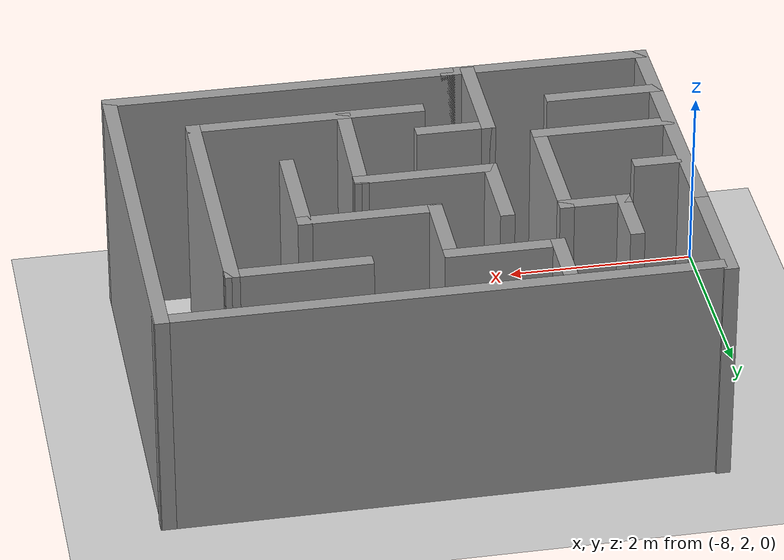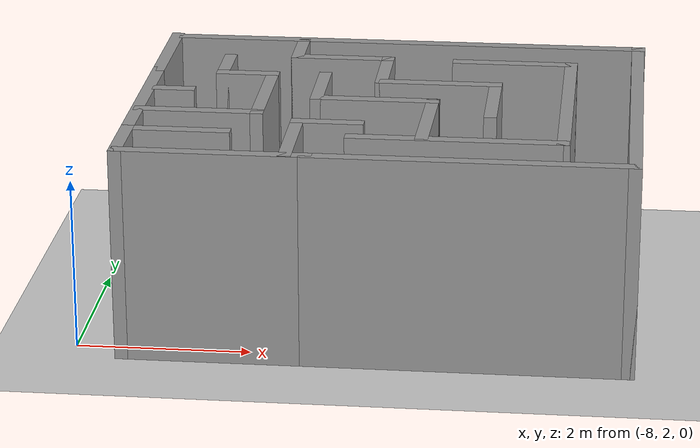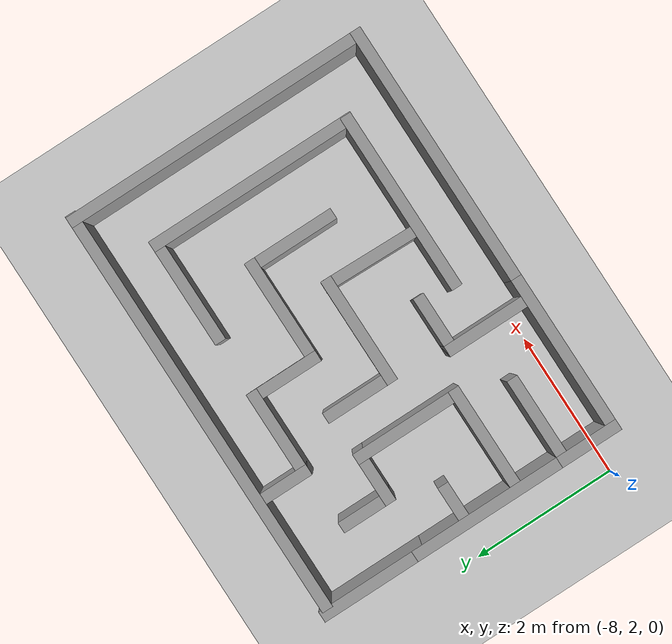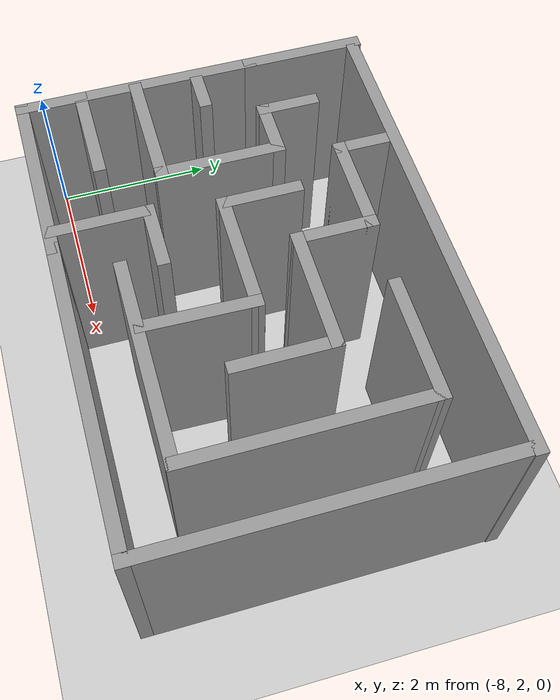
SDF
<sdf version="1.7">
 <world name="default">
  <light name="sun" type="directional">
   <pose>0 0 10 0 -0 0</pose>
   <diffuse>0.8 0.8 0.8 1</diffuse>
   <specular>0.2 0.2 0.2 1</specular>
   <attenuation>
    <range>1000</range>
    <constant>0.9</constant>
    <linear>0.01</linear>
    <quadratic>0.001</quadratic>
   </attenuation>
   <direction>-0.5 0.1 -0.9</direction>
   <spot><inner_angle>0</inner_angle><outer_angle>0</outer_angle><falloff>0</falloff></spot>
  </light>
  <gravity>0 0 -9.8</gravity>
  <magnetic_field>6e-06 2.3e-05 -4.2e-05</magnetic_field>
  <atmosphere type="adiabatic"/>
  <physics type="ode">
   <max_step_size>0.001</max_step_size>
   <real_time_factor>1</real_time_factor>
   <real_time_update_rate>1000</real_time_update_rate>
  </physics>
  <scene><ambient>0.4 0.4 0.4 1</ambient><background>0.7 0.7 0.7 1</background><shadows>1</shadows></scene>
  <spherical_coordinates>
   <surface_model>EARTH_WGS84</surface_model>
   <latitude_deg>0</latitude_deg>
   <longitude_deg>0</longitude_deg>
   <elevation>0</elevation>
   <heading_deg>0</heading_deg>
  </spherical_coordinates>
  <model name="maze">
   <pose>-3.75292 2.99471 0 0 -0 0</pose>
   <link name="Wall_28">
    <collision name="Wall_28_Collision">
     <geometry><box><size>0.86 0.15 2.5</size></box></geometry>
     <pose>0 0 1.25 0 -0 0</pose>
    </collision>
    <visual name="Wall_28_Visual">
     <pose>0 0 1.25 0 -0 0</pose>
     <geometry><box><size>0.86 0.15 2.5</size></box></geometry>
     <material>
      <script><uri>file://media/materials/scripts/gazebo.material</uri><name>Gazebo/Grey</name></script>
      <ambient>1 1 1 1</ambient>
     </material>
     <meta><layer>0</layer></meta>
    </visual>
    <pose>-3.67792 -0.885292 0 0 -0 1.5708</pose>
   </link>
   <link name="Wall_30">
    <collision name="Wall_30_Collision">
     <geometry><box><size>1.25 0.15 2.5</size></box></geometry>
     <pose>0 0 1.25 0 -0 0</pose>
    </collision>
    <visual name="Wall_30_Visual">
     <pose>0 0 1.25 0 -0 0</pose>
     <geometry><box><size>1.25 0.15 2.5</size></box></geometry>
     <material>
      <script><uri>file://media/materials/scripts/gazebo.material</uri><name>Gazebo/Grey</name></script>
      <ambient>1 1 1 1</ambient>
     </material>
     <meta><layer>0</layer></meta>
    </visual>
    <pose>-3.12792 -0.530292 0 0 -0 0</pose>
   </link>
   <link name="Wall_32">
    <collision name="Wall_32_Collision">
     <geometry><box><size>2.25 0.15 2.5</size></box></geometry>
     <pose>0 0 1.25 0 -0 0</pose>
    </collision>
    <visual name="Wall_32_Visual">
     <pose>0 0 1.25 0 -0 0</pose>
     <geometry><box><size>2.25 0.15 2.5</size></box></geometry>
     <material>
      <script><uri>file://media/materials/scripts/gazebo.material</uri><name>Gazebo/Grey</name></script>
      <ambient>1 1 1 1</ambient>
     </material>
     <meta><layer>0</layer></meta>
    </visual>
    <pose>-2.62792 -1.24029 0 0 -0 0</pose>
   </link>
   <link name="Wall_33">
    <collision name="Wall_33_Collision">
     <geometry><box><size>3.75013 0.15 2.5</size></box></geometry>
     <pose>0 0 1.25 0 -0 0</pose>
    </collision>
    <visual name="Wall_33_Visual">
     <pose>0 0 1.25 0 -0 0</pose>
     <geometry><box><size>3.75013 0.15 2.5</size></box></geometry>
     <material>
      <script><uri>file://media/materials/scripts/gazebo.material</uri><name>Gazebo/Grey</name></script>
      <ambient>1 1 1 1</ambient>
     </material>
     <meta><layer>0</layer></meta>
    </visual>
    <pose>0.22208 -1.24029 0 0 -0 0</pose>
   </link>
   <link name="Wall_35">
    <collision name="Wall_35_Collision">
     <geometry><box><size>1.25 0.15 2.5</size></box></geometry>
     <pose>0 0 1.25 0 -0 0</pose>
    </collision>
    <visual name="Wall_35_Visual">
     <pose>0 0 1.25 0 -0 0</pose>
     <geometry><box><size>1.25 0.15 2.5</size></box></geometry>
     <material>
      <script><uri>file://media/materials/scripts/gazebo.material</uri><name>Gazebo/Grey</name></script>
      <ambient>1 1 1 1</ambient>
     </material>
     <meta><layer>0</layer></meta>
    </visual>
    <pose>-1.80129 -0.669011 0 0 -0 1.5708</pose>
   </link>
   <link name="Wall_36">
    <collision name="Wall_36_Collision">
     <geometry><box><size>0.835932 0.15 2.5</size></box></geometry>
     <pose>0 0 1.25 0 -0 0</pose>
    </collision>
    <visual name="Wall_36_Visual">
     <pose>0 0 1.25 0 -0 0</pose>
     <geometry><box><size>0.835932 0.15 2.5</size></box></geometry>
     <material>
      <script><uri>file://media/materials/scripts/gazebo.material</uri><name>Gazebo/Grey</name></script>
      <ambient>1 1 1 1</ambient>
     </material>
     <meta><layer>0</layer></meta>
    </visual>
    <pose>-1.45833 -0.119011 0 0 -0 0</pose>
   </link>
   <link name="Wall_38">
    <collision name="Wall_38_Collision">
     <geometry><box><size>2.5 0.15 2.5</size></box></geometry>
     <pose>0 0 1.25 0 -0 0</pose>
    </collision>
    <visual name="Wall_38_Visual">
     <pose>0 0 1.25 0 -0 0</pose>
     <geometry><box><size>2.5 0.15 2.5</size></box></geometry>
     <material>
      <script><uri>file://media/materials/scripts/gazebo.material</uri><name>Gazebo/Grey</name></script>
      <ambient>1 1 1 1</ambient>
     </material>
     <meta><layer>0</layer></meta>
    </visual>
    <pose>0.038367 -0.573286 0 0 -0 0</pose>
   </link>
   <link name="Wall_41">
    <collision name="Wall_41_Collision">
     <geometry><box><size>4.275 0.15 2.5</size></box></geometry>
     <pose>0 0 1.25 0 -0 0</pose>
    </collision>
    <visual name="Wall_41_Visual">
     <pose>0 0 1.25 0 -0 0</pose>
     <geometry><box><size>4.275 0.15 2.5</size></box></geometry>
     <material>
      <script><uri>file://media/materials/scripts/gazebo.material</uri><name>Gazebo/Grey</name></script>
      <ambient>1 1 1 1</ambient>
     </material>
     <meta><layer>0</layer></meta>
    </visual>
    <pose>2.02208 0.822208 0 0 -0 1.5708</pose>
   </link>
   <link name="Wall_42">
    <collision name="Wall_42_Collision">
     <geometry><box><size>5.75 0.15 2.5</size></box></geometry>
     <pose>0 0 1.25 0 -0 0</pose>
    </collision>
    <visual name="Wall_42_Visual">
     <pose>0 0 1.25 0 -0 0</pose>
     <geometry><box><size>5.75 0.15 2.5</size></box></geometry>
     <material>
      <script><uri>file://media/materials/scripts/gazebo.material</uri><name>Gazebo/Grey</name></script>
      <ambient>1 1 1 1</ambient>
     </material>
     <meta><layer>0</layer></meta>
    </visual>
    <pose>-0.76642 2.88471 0 0 -0 3.14159</pose>
   </link>
   <link name="Wall_44">
    <collision name="Wall_44_Collision">
     <geometry><box><size>2.25 0.15 2.5</size></box></geometry>
     <pose>0 0 1.25 0 -0 0</pose>
    </collision>
    <visual name="Wall_44_Visual">
     <pose>0 0 1.25 0 -0 0</pose>
     <geometry><box><size>2.25 0.15 2.5</size></box></geometry>
     <material>
      <script><uri>file://media/materials/scripts/gazebo.material</uri><name>Gazebo/Grey</name></script>
      <ambient>1 1 1 1</ambient>
     </material>
     <meta><layer>0</layer></meta>
    </visual>
    <pose>-3.67792 0.519708 0 0 -0 1.5708</pose>
   </link>
   <link name="Wall_46">
    <collision name="Wall_46_Collision">
     <geometry><box><size>2.92415 0.15 2.5</size></box></geometry>
     <pose>0 0 1.25 0 -0 0</pose>
    </collision>
    <visual name="Wall_46_Visual">
     <pose>0 0 1.25 0 -0 0</pose>
     <geometry><box><size>2.92415 0.15 2.5</size></box></geometry>
     <material>
      <script><uri>file://media/materials/scripts/gazebo.material</uri><name>Gazebo/Grey</name></script>
      <ambient>1 1 1 1</ambient>
     </material>
     <meta><layer>0</layer></meta>
    </visual>
    <pose>1.22582 0.813789 0 0 -0 1.57011</pose>
   </link>
   <link name="Wall_48">
    <collision name="Wall_48_Collision">
     <geometry><box><size>1.5 0.15 2.5</size></box></geometry>
     <pose>0 0 1.25 0 -0 0</pose>
    </collision>
    <visual name="Wall_48_Visual">
     <pose>0 0 1.25 0 -0 0</pose>
     <geometry><box><size>1.5 0.15 2.5</size></box></geometry>
     <material>
      <script><uri>file://media/materials/scripts/gazebo.material</uri><name>Gazebo/Grey</name></script>
      <ambient>1 1 1 1</ambient>
     </material>
     <meta><layer>0</layer></meta>
    </visual>
    <pose>0.551765 2.20086 0 0 -0 3.14159</pose>
   </link>
   <link name="Wall_51">
    <collision name="Wall_51_Collision">
     <geometry><box><size>1.5 0.15 2.5</size></box></geometry>
     <pose>0 0 1.25 0 -0 0</pose>
    </collision>
    <visual name="Wall_51_Visual">
     <pose>0 0 1.25 0 -0 0</pose>
     <geometry><box><size>1.5 0.15 2.5</size></box></geometry>
     <material>
      <script><uri>file://media/materials/scripts/gazebo.material</uri><name>Gazebo/Grey</name></script>
      <ambient>1 1 1 1</ambient>
     </material>
     <meta><layer>0</layer></meta>
    </visual>
    <pose>-2.97072 0.140359 0 0 -0 0</pose>
   </link>
   <link name="Wall_53">
    <collision name="Wall_53_Collision">
     <geometry><box><size>1.54004 0.15 2.5</size></box></geometry>
     <pose>0 0 1.25 0 -0 0</pose>
    </collision>
    <visual name="Wall_53_Visual">
     <pose>0 0 1.25 0 -0 0</pose>
     <geometry><box><size>1.54004 0.15 2.5</size></box></geometry>
     <material>
      <script><uri>file://media/materials/scripts/gazebo.material</uri><name>Gazebo/Grey</name></script>
      <ambient>1 1 1 1</ambient>
     </material>
     <meta><layer>0</layer></meta>
    </visual>
    <pose>-2.29572 0.835359 0 0 -0 1.5708</pose>
   </link>
   <link name="Wall_56">
    <collision name="Wall_56_Collision">
     <geometry><box><size>0.5 0.15 2.5</size></box></geometry>
     <pose>0 0 1.25 0 -0 0</pose>
    </collision>
    <visual name="Wall_56_Visual">
     <pose>0 0 1.25 0 -0 0</pose>
     <geometry><box><size>0.5 0.15 2.5</size></box></geometry>
     <material>
      <script><uri>file://media/materials/scripts/gazebo.material</uri><name>Gazebo/Grey</name></script>
      <ambient>1 1 1 1</ambient>
     </material>
     <meta><layer>0</layer></meta>
    </visual>
    <pose>-3.38222 0.884359 0 0 -0 0</pose>
   </link>
   <link name="Wall_63">
    <collision name="Wall_63_Collision">
     <geometry><box><size>1.5 0.15 2.5</size></box></geometry>
     <pose>0 0 1.25 0 -0 0</pose>
    </collision>
    <visual name="Wall_63_Visual">
     <pose>0 0 1.25 0 -0 0</pose>
     <geometry><box><size>1.5 0.15 2.5</size></box></geometry>
     <material>
      <script><uri>file://media/materials/scripts/gazebo.material</uri><name>Gazebo/Grey</name></script>
      <ambient>1 1 1 1</ambient>
     </material>
     <meta><layer>0</layer></meta>
    </visual>
    <pose>-1.00022 0.712359 0 0 -0 3.14159</pose>
   </link>
   <link name="Wall_64">
    <collision name="Wall_64_Collision">
     <geometry><box><size>1 0.15 2.5</size></box></geometry>
     <pose>0 0 1.25 0 -0 0</pose>
    </collision>
    <visual name="Wall_64_Visual">
     <pose>0 0 1.25 0 -0 0</pose>
     <geometry><box><size>1 0.15 2.5</size></box></geometry>
     <material>
      <script><uri>file://media/materials/scripts/gazebo.material</uri><name>Gazebo/Grey</name></script>
      <ambient>1 1 1 1</ambient>
     </material>
     <meta><layer>0</layer></meta>
    </visual>
    <pose>-1.67522 1.13736 0 0 -0 1.5708</pose>
   </link>
   <link name="Wall_68">
    <collision name="Wall_68_Collision">
     <geometry><box><size>0.75 0.15 2.5</size></box></geometry>
     <pose>0 0 1.25 0 -0 0</pose>
    </collision>
    <visual name="Wall_68_Visual">
     <pose>0 0 1.25 0 -0 0</pose>
     <geometry><box><size>0.75 0.15 2.5</size></box></geometry>
     <material>
      <script><uri>file://media/materials/scripts/gazebo.material</uri><name>Gazebo/Grey</name></script>
      <ambient>1 1 1 1</ambient>
     </material>
     <meta><layer>0</layer></meta>
    </visual>
    <pose>-2.59572 1.53036 0 0 -0 3.14159</pose>
   </link>
   <link name="Wall_70">
    <collision name="Wall_70_Collision">
     <geometry><box><size>0.75 0.15 2.5</size></box></geometry>
     <pose>0 0 1.25 0 -0 0</pose>
    </collision>
    <visual name="Wall_70_Visual">
     <pose>0 0 1.25 0 -0 0</pose>
     <geometry><box><size>0.75 0.15 2.5</size></box></geometry>
     <material>
      <script><uri>file://media/materials/scripts/gazebo.material</uri><name>Gazebo/Grey</name></script>
      <ambient>1 1 1 1</ambient>
     </material>
     <meta><layer>0</layer></meta>
    </visual>
    <pose>-2.89572 1.83036 0 0 -0 1.5708</pose>
   </link>
   <link name="Wall_72">
    <collision name="Wall_72_Collision">
     <geometry><box><size>1.5 0.15 2.5</size></box></geometry>
     <pose>0 0 1.25 0 -0 0</pose>
    </collision>
    <visual name="Wall_72_Visual">
     <pose>0 0 1.25 0 -0 0</pose>
     <geometry><box><size>1.5 0.15 2.5</size></box></geometry>
     <material>
      <script><uri>file://media/materials/scripts/gazebo.material</uri><name>Gazebo/Grey</name></script>
      <ambient>1 1 1 1</ambient>
     </material>
     <meta><layer>0</layer></meta>
    </visual>
    <pose>-3.67792 2.24471 0 0 -0 1.5708</pose>
   </link>
   <link name="Wall_74">
    <collision name="Wall_74_Collision">
     <geometry><box><size>0.75 0.15 2.5</size></box></geometry>
     <pose>0 0 1.25 0 -0 0</pose>
    </collision>
    <visual name="Wall_74_Visual">
     <pose>0 0 1.25 0 -0 0</pose>
     <geometry><box><size>0.75 0.15 2.5</size></box></geometry>
     <material>
      <script><uri>file://media/materials/scripts/gazebo.material</uri><name>Gazebo/Grey</name></script>
      <ambient>1 1 1 1</ambient>
     </material>
     <meta><layer>0</layer></meta>
    </visual>
    <pose>-2.08351 2.51961 0 0 -0 -1.5708</pose>
   </link>
   <link name="Wall_76">
    <collision name="Wall_76_Collision">
     <geometry><box><size>1.25 0.15 2.5</size></box></geometry>
     <pose>0 0 1.25 0 -0 0</pose>
    </collision>
    <visual name="Wall_76_Visual">
     <pose>0 0 1.25 0 -0 0</pose>
     <geometry><box><size>1.25 0.15 2.5</size></box></geometry>
     <material>
      <script><uri>file://media/materials/scripts/gazebo.material</uri><name>Gazebo/Grey</name></script>
      <ambient>1 1 1 1</ambient>
     </material>
     <meta><layer>0</layer></meta>
    </visual>
    <pose>-1.53351 2.21961 0 0 -0 0</pose>
   </link>
   <link name="Wall_77">
    <collision name="Wall_77_Collision">
     <geometry><box><size>1 0.15 2.5</size></box></geometry>
     <pose>0 0 1.25 0 -0 0</pose>
    </collision>
    <visual name="Wall_77_Visual">
     <pose>0 0 1.25 0 -0 0</pose>
     <geometry><box><size>1 0.15 2.5</size></box></geometry>
     <material>
      <script><uri>file://media/materials/scripts/gazebo.material</uri><name>Gazebo/Grey</name></script>
      <ambient>1 1 1 1</ambient>
     </material>
     <meta><layer>0</layer></meta>
    </visual>
    <pose>-0.983511 1.79461 0 0 -0 -1.5708</pose>
   </link>
   <link name="Wall_78">
    <collision name="Wall_78_Collision">
     <geometry><box><size>1.5 0.15 2.5</size></box></geometry>
     <pose>0 0 1.25 0 -0 0</pose>
    </collision>
    <visual name="Wall_78_Visual">
     <pose>0 0 1.25 0 -0 0</pose>
     <geometry><box><size>1.5 0.15 2.5</size></box></geometry>
     <material>
      <script><uri>file://media/materials/scripts/gazebo.material</uri><name>Gazebo/Grey</name></script>
      <ambient>1 1 1 1</ambient>
     </material>
     <meta><layer>0</layer></meta>
    </visual>
    <pose>-0.308511 1.36961 0 0 -0 0</pose>
   </link>
   <link name="Wall_79">
    <collision name="Wall_79_Collision">
     <geometry><box><size>1.25 0.15 2.5</size></box></geometry>
     <pose>0 0 1.25 0 -0 0</pose>
    </collision>
    <visual name="Wall_79_Visual">
     <pose>0 0 1.25 0 -0 0</pose>
     <geometry><box><size>1.25 0.15 2.5</size></box></geometry>
     <material>
      <script><uri>file://media/materials/scripts/gazebo.material</uri><name>Gazebo/Grey</name></script>
      <ambient>1 1 1 1</ambient>
     </material>
     <meta><layer>0</layer></meta>
    </visual>
    <pose>0.366489 0.819613 0 0 -0 -1.5708</pose>
   </link>
   <link name="Wall_81">
    <collision name="Wall_81_Collision">
     <geometry><box><size>1.39307 0.15 2.5</size></box></geometry>
     <pose>0 0 1.25 0 -0 0</pose>
    </collision>
    <visual name="Wall_81_Visual">
     <pose>0 0 1.25 0 -0 0</pose>
     <geometry><box><size>1.39307 0.15 2.5</size></box></geometry>
     <material>
      <script><uri>file://media/materials/scripts/gazebo.material</uri><name>Gazebo/Grey</name></script>
      <ambient>1 1 1 1</ambient>
     </material>
     <meta><layer>0</layer></meta>
    </visual>
    <pose>-0.339364 0.090986 0 0 -0 1.54803</pose>
   </link>
   <static>1</static>
  </model>
  <model name="ground_plane">
   <static>1</static>
   <link name="link">
    <collision name="collision">
     <geometry><plane><normal>0 0 1</normal><size>100 100</size></plane></geometry>
     <surface>
      <contact><collide_bitmask>65535</collide_bitmask></contact>
      <friction><ode><mu>100</mu><mu2>50</mu2></ode></friction>
     </surface>
    </collision>
    <visual name="visual">
     <cast_shadows>0</cast_shadows>
     <geometry><plane><normal>0 0 1</normal><size>100 100</size></plane></geometry>
     <material>
      <script><uri>file://media/materials/scripts/gazebo.material</uri><name>Gazebo/Grey</name></script>
     </material>
    </visual>
   </link>
  </model>
 </world>
</sdf>
